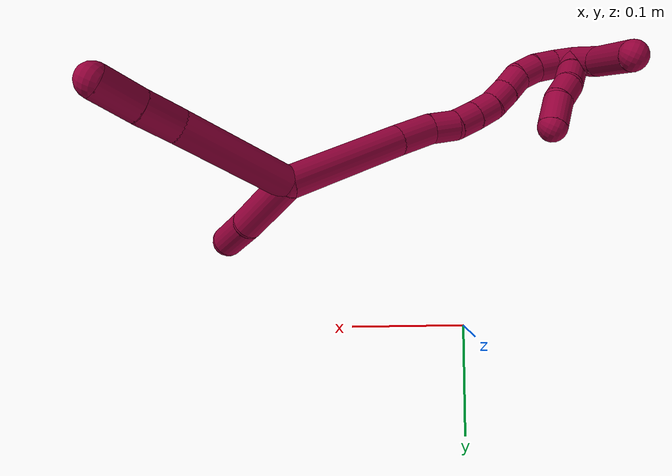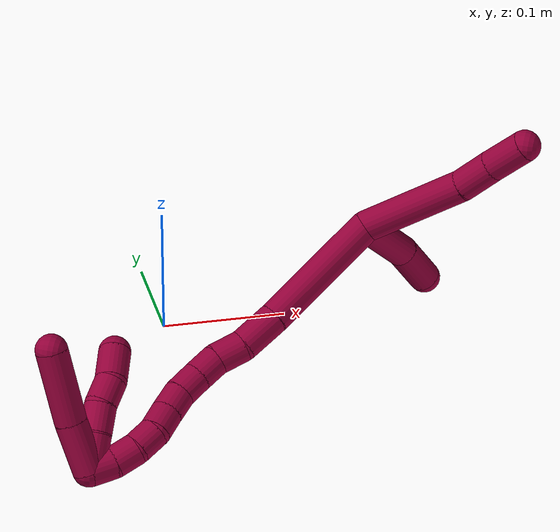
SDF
<sdf version="1.7">
 <world name="default">
  <model name="8">
   <static>0</static>
   <link name="8">
    <collision name="collision-cylinder-e_1_2_8">
     <pose>0.018056 0.017382 -0.03612 -2.69308 0.42323 -1.51093</pose>
     <geometry><cylinder><radius>0.0125</radius><length>0.087927</length></cylinder></geometry>
     <surface>
      <friction><ode><mu>1.16</mu><mu2>1.16</mu2><slip1>0</slip1><slip2>0</slip2></ode></friction>
      <contact><ode><kp>1e+06</kp><kd>1</kd><max_vel>0</max_vel><min_depth>0.001</min_depth></ode></contact>
     </surface>
    </collision>
    <visual name="visual-cylinder-e_1_2_8">
     <pose>0.018056 0.017382 -0.03612 -2.69308 0.42323 -1.51093</pose>
     <geometry><cylinder><radius>0.0125</radius><length>0.087927</length></cylinder></geometry>
     <material><ambient>0.584314 0 0.227451 1</ambient></material>
    </visual>
    <collision name="collision-cylinder-e_2_8_9">
     <pose>0.04332 0.042257 -0.082969 -2.53195 0.503447 -1.37054</pose>
     <geometry><cylinder><radius>0.0125</radius><length>0.029881</length></cylinder></geometry>
     <surface>
      <friction><ode><mu>1.16</mu><mu2>1.16</mu2><slip1>0</slip1><slip2>0</slip2></ode></friction>
      <contact><ode><kp>1e+06</kp><kd>1</kd><max_vel>0</max_vel><min_depth>0.001</min_depth></ode></contact>
     </surface>
    </collision>
    <visual name="visual-cylinder-e_2_8_9">
     <pose>0.04332 0.042257 -0.082969 -2.53195 0.503447 -1.37054</pose>
     <geometry><cylinder><radius>0.0125</radius><length>0.029881</length></cylinder></geometry>
     <material><ambient>0.584314 0 0.227451 1</ambient></material>
    </visual>
    <collision name="collision-cylinder-e_3_9_6">
     <pose>0.058669 0.057123 -0.105465 -2.58185 0.530259 -1.51395</pose>
     <geometry><cylinder><radius>0.0125</radius><length>0.032192</length></cylinder></geometry>
     <surface>
      <friction><ode><mu>1.16</mu><mu2>1.16</mu2><slip1>0</slip1><slip2>0</slip2></ode></friction>
      <contact><ode><kp>1e+06</kp><kd>1</kd><max_vel>0</max_vel><min_depth>0.001</min_depth></ode></contact>
     </surface>
    </collision>
    <visual name="visual-cylinder-e_3_9_6">
     <pose>0.058669 0.057123 -0.105465 -2.58185 0.530259 -1.51395</pose>
     <geometry><cylinder><radius>0.0125</radius><length>0.032192</length></cylinder></geometry>
     <material><ambient>0.584314 0 0.227451 1</ambient></material>
    </visual>
    <collision name="collision-cylinder-e_1_2_10">
     <pose>-0.027492 0.000513 -0.011626 -3.0975 -1.17035 3.07507</pose>
     <geometry><cylinder><radius>0.0125</radius><length>0.059707</length></cylinder></geometry>
     <surface>
      <friction><ode><mu>1.16</mu><mu2>1.16</mu2><slip1>0</slip1><slip2>0</slip2></ode></friction>
      <contact><ode><kp>1e+06</kp><kd>1</kd><max_vel>0</max_vel><min_depth>0.001</min_depth></ode></contact>
     </surface>
    </collision>
    <visual name="visual-cylinder-e_1_2_10">
     <pose>-0.027492 0.000513 -0.011626 -3.0975 -1.17035 3.07507</pose>
     <geometry><cylinder><radius>0.0125</radius><length>0.059707</length></cylinder></geometry>
     <material><ambient>0.584314 0 0.227451 1</ambient></material>
    </visual>
    <collision name="collision-cylinder-e_2_10_5">
     <pose>-0.072989 -0.002779 -0.031451 2.70711 -1.10558 -2.45444</pose>
     <geometry><cylinder><radius>0.0125</radius><length>0.040293</length></cylinder></geometry>
     <surface>
      <friction><ode><mu>1.16</mu><mu2>1.16</mu2><slip1>0</slip1><slip2>0</slip2></ode></friction>
      <contact><ode><kp>1e+06</kp><kd>1</kd><max_vel>0</max_vel><min_depth>0.001</min_depth></ode></contact>
     </surface>
    </collision>
    <visual name="visual-cylinder-e_2_10_5">
     <pose>-0.072989 -0.002779 -0.031451 2.70711 -1.10558 -2.45444</pose>
     <geometry><cylinder><radius>0.0125</radius><length>0.040293</length></cylinder></geometry>
     <material><ambient>0.584314 0 0.227451 1</ambient></material>
    </visual>
    <collision name="collision-cylinder-e_1_2_11">
     <pose>0.005933 -0.044031 0.026202 1.034 0.115282 0.065597</pose>
     <geometry><cylinder><radius>0.0125</radius><length>0.10316</length></cylinder></geometry>
     <surface>
      <friction><ode><mu>1.16</mu><mu2>1.16</mu2><slip1>0</slip1><slip2>0</slip2></ode></friction>
      <contact><ode><kp>1e+06</kp><kd>1</kd><max_vel>0</max_vel><min_depth>0.001</min_depth></ode></contact>
     </surface>
    </collision>
    <visual name="visual-cylinder-e_1_2_11">
     <pose>0.005933 -0.044031 0.026202 1.034 0.115282 0.065597</pose>
     <geometry><cylinder><radius>0.0125</radius><length>0.10316</length></cylinder></geometry>
     <material><ambient>0.584314 0 0.227451 1</ambient></material>
    </visual>
    <collision name="collision-cylinder-e_2_11_12">
     <pose>0.014221 -0.101656 0.061456 0.983344 0.14322 0.076793</pose>
     <geometry><cylinder><radius>0.0125</radius><length>0.033001</length></cylinder></geometry>
     <surface>
      <friction><ode><mu>1.16</mu><mu2>1.16</mu2><slip1>0</slip1><slip2>0</slip2></ode></friction>
      <contact><ode><kp>1e+06</kp><kd>1</kd><max_vel>0</max_vel><min_depth>0.001</min_depth></ode></contact>
     </surface>
    </collision>
    <visual name="visual-cylinder-e_2_11_12">
     <pose>0.014221 -0.101656 0.061456 0.983344 0.14322 0.076793</pose>
     <geometry><cylinder><radius>0.0125</radius><length>0.033001</length></cylinder></geometry>
     <material><ambient>0.584314 0 0.227451 1</ambient></material>
    </visual>
    <collision name="collision-cylinder-e_3_12_13">
     <pose>0.018306 -0.122886 0.079094 0.726948 0.149399 0.056918</pose>
     <geometry><cylinder><radius>0.0125</radius><length>0.023242</length></cylinder></geometry>
     <surface>
      <friction><ode><mu>1.16</mu><mu2>1.16</mu2><slip1>0</slip1><slip2>0</slip2></ode></friction>
      <contact><ode><kp>1e+06</kp><kd>1</kd><max_vel>0</max_vel><min_depth>0.001</min_depth></ode></contact>
     </surface>
    </collision>
    <visual name="visual-cylinder-e_3_12_13">
     <pose>0.018306 -0.122886 0.079094 0.726948 0.149399 0.056918</pose>
     <geometry><cylinder><radius>0.0125</radius><length>0.023242</length></cylinder></geometry>
     <material><ambient>0.584314 0 0.227451 1</ambient></material>
    </visual>
    <collision name="collision-cylinder-e_4_13_14">
     <pose>0.022458 -0.139081 0.092865 1.02605 0.237533 0.134243</pose>
     <geometry><cylinder><radius>0.0125</radius><length>0.020589</length></cylinder></geometry>
     <surface>
      <friction><ode><mu>1.16</mu><mu2>1.16</mu2><slip1>0</slip1><slip2>0</slip2></ode></friction>
      <contact><ode><kp>1e+06</kp><kd>1</kd><max_vel>0</max_vel><min_depth>0.001</min_depth></ode></contact>
     </surface>
    </collision>
    <visual name="visual-cylinder-e_4_13_14">
     <pose>0.022458 -0.139081 0.092865 1.02605 0.237533 0.134243</pose>
     <geometry><cylinder><radius>0.0125</radius><length>0.020589</length></cylinder></geometry>
     <material><ambient>0.584314 0 0.227451 1</ambient></material>
    </visual>
    <collision name="collision-cylinder-e_5_14_15">
     <pose>0.027665 -0.156046 0.102693 1.06627 0.282132 0.167219</pose>
     <geometry><cylinder><radius>0.0125</radius><length>0.02</length></cylinder></geometry>
     <surface>
      <friction><ode><mu>1.16</mu><mu2>1.16</mu2><slip1>0</slip1><slip2>0</slip2></ode></friction>
      <contact><ode><kp>1e+06</kp><kd>1</kd><max_vel>0</max_vel><min_depth>0.001</min_depth></ode></contact>
     </surface>
    </collision>
    <visual name="visual-cylinder-e_5_14_15">
     <pose>0.027665 -0.156046 0.102693 1.06627 0.282132 0.167219</pose>
     <geometry><cylinder><radius>0.0125</radius><length>0.02</length></cylinder></geometry>
     <material><ambient>0.584314 0 0.227451 1</ambient></material>
    </visual>
    <collision name="collision-cylinder-e_6_15_16">
     <pose>0.033926 -0.173502 0.109802 1.30475 0.355099 0.27247</pose>
     <geometry><cylinder><radius>0.0125</radius><length>0.020003</length></cylinder></geometry>
     <surface>
      <friction><ode><mu>1.16</mu><mu2>1.16</mu2><slip1>0</slip1><slip2>0</slip2></ode></friction>
      <contact><ode><kp>1e+06</kp><kd>1</kd><max_vel>0</max_vel><min_depth>0.001</min_depth></ode></contact>
     </surface>
    </collision>
    <visual name="visual-cylinder-e_6_15_16">
     <pose>0.033926 -0.173502 0.109802 1.30475 0.355099 0.27247</pose>
     <geometry><cylinder><radius>0.0125</radius><length>0.020003</length></cylinder></geometry>
     <material><ambient>0.584314 0 0.227451 1</ambient></material>
    </visual>
    <collision name="collision-cylinder-e_7_16_17">
     <pose>0.041381 -0.191515 0.114228 1.35547 0.408951 0.33079</pose>
     <geometry><cylinder><radius>0.0125</radius><length>0.020004</length></cylinder></geometry>
     <surface>
      <friction><ode><mu>1.16</mu><mu2>1.16</mu2><slip1>0</slip1><slip2>0</slip2></ode></friction>
      <contact><ode><kp>1e+06</kp><kd>1</kd><max_vel>0</max_vel><min_depth>0.001</min_depth></ode></contact>
     </surface>
    </collision>
    <visual name="visual-cylinder-e_7_16_17">
     <pose>0.041381 -0.191515 0.114228 1.35547 0.408951 0.33079</pose>
     <geometry><cylinder><radius>0.0125</radius><length>0.020004</length></cylinder></geometry>
     <material><ambient>0.584314 0 0.227451 1</ambient></material>
    </visual>
    <collision name="collision-cylinder-e_8_17_18">
     <pose>0.047955 -0.208772 0.121139 1.03261 0.262708 0.149714</pose>
     <geometry><cylinder><radius>0.0125</radius><length>0.02</length></cylinder></geometry>
     <surface>
      <friction><ode><mu>1.16</mu><mu2>1.16</mu2><slip1>0</slip1><slip2>0</slip2></ode></friction>
      <contact><ode><kp>1e+06</kp><kd>1</kd><max_vel>0</max_vel><min_depth>0.001</min_depth></ode></contact>
     </surface>
    </collision>
    <visual name="visual-cylinder-e_8_17_18">
     <pose>0.047955 -0.208772 0.121139 1.03261 0.262708 0.149714</pose>
     <geometry><cylinder><radius>0.0125</radius><length>0.02</length></cylinder></geometry>
     <material><ambient>0.584314 0 0.227451 1</ambient></material>
    </visual>
    <collision name="collision-cylinder-e_9_18_19">
     <pose>0.052202 -0.224207 0.13289 0.80987 0.165769 0.071186</pose>
     <geometry><cylinder><radius>0.0125</radius><length>0.02</length></cylinder></geometry>
     <surface>
      <friction><ode><mu>1.16</mu><mu2>1.16</mu2><slip1>0</slip1><slip2>0</slip2></ode></friction>
      <contact><ode><kp>1e+06</kp><kd>1</kd><max_vel>0</max_vel><min_depth>0.001</min_depth></ode></contact>
     </surface>
    </collision>
    <visual name="visual-cylinder-e_9_18_19">
     <pose>0.052202 -0.224207 0.13289 0.80987 0.165769 0.071186</pose>
     <geometry><cylinder><radius>0.0125</radius><length>0.02</length></cylinder></geometry>
     <material><ambient>0.584314 0 0.227451 1</ambient></material>
    </visual>
    <collision name="collision-cylinder-e_10_19_1">
     <pose>0.056552 -0.236798 0.147631 0.601419 0.273389 0.085262</pose>
     <geometry><cylinder><radius>0.0125</radius><length>0.02</length></cylinder></geometry>
     <surface>
      <friction><ode><mu>1.16</mu><mu2>1.16</mu2><slip1>0</slip1><slip2>0</slip2></ode></friction>
      <contact><ode><kp>1e+06</kp><kd>1</kd><max_vel>0</max_vel><min_depth>0.001</min_depth></ode></contact>
     </surface>
    </collision>
    <visual name="visual-cylinder-e_10_19_1">
     <pose>0.056552 -0.236798 0.147631 0.601419 0.273389 0.085262</pose>
     <geometry><cylinder><radius>0.0125</radius><length>0.02</length></cylinder></geometry>
     <material><ambient>0.584314 0 0.227451 1</ambient></material>
    </visual>
    <collision name="collision-cylinder-e_1_1_20">
     <pose>0.070831 -0.227418 0.164114 -1.04805 0.594836 -0.35064</pose>
     <geometry><cylinder><radius>0.0125</radius><length>0.041325</length></cylinder></geometry>
     <surface>
      <friction><ode><mu>1.16</mu><mu2>1.16</mu2><slip1>0</slip1><slip2>0</slip2></ode></friction>
      <contact><ode><kp>1e+06</kp><kd>1</kd><max_vel>0</max_vel><min_depth>0.001</min_depth></ode></contact>
     </surface>
    </collision>
    <visual name="visual-cylinder-e_1_1_20">
     <pose>0.070831 -0.227418 0.164114 -1.04805 0.594836 -0.35064</pose>
     <geometry><cylinder><radius>0.0125</radius><length>0.041325</length></cylinder></geometry>
     <material><ambient>0.584314 0 0.227451 1</ambient></material>
    </visual>
    <collision name="collision-cylinder-e_2_20_4">
     <pose>0.100172 -0.191145 0.181895 -1.16408 0.65032 -0.436646</pose>
     <geometry><cylinder><radius>0.0125</radius><length>0.058675</length></cylinder></geometry>
     <surface>
      <friction><ode><mu>1.16</mu><mu2>1.16</mu2><slip1>0</slip1><slip2>0</slip2></ode></friction>
      <contact><ode><kp>1e+06</kp><kd>1</kd><max_vel>0</max_vel><min_depth>0.001</min_depth></ode></contact>
     </surface>
    </collision>
    <visual name="visual-cylinder-e_2_20_4">
     <pose>0.100172 -0.191145 0.181895 -1.16408 0.65032 -0.436646</pose>
     <geometry><cylinder><radius>0.0125</radius><length>0.058675</length></cylinder></geometry>
     <material><ambient>0.584314 0 0.227451 1</ambient></material>
    </visual>
    <collision name="collision-cylinder-e_1_1_21">
     <pose>0.0608 -0.228199 0.156077 -1.53469 0.109644 -0.105763</pose>
     <geometry><cylinder><radius>0.0125</radius><length>0.028281</length></cylinder></geometry>
     <surface>
      <friction><ode><mu>1.16</mu><mu2>1.16</mu2><slip1>0</slip1><slip2>0</slip2></ode></friction>
      <contact><ode><kp>1e+06</kp><kd>1</kd><max_vel>0</max_vel><min_depth>0.001</min_depth></ode></contact>
     </surface>
    </collision>
    <visual name="visual-cylinder-e_1_1_21">
     <pose>0.0608 -0.228199 0.156077 -1.53469 0.109644 -0.105763</pose>
     <geometry><cylinder><radius>0.0125</radius><length>0.028281</length></cylinder></geometry>
     <material><ambient>0.584314 0 0.227451 1</ambient></material>
    </visual>
    <collision name="collision-cylinder-e_2_21_22">
     <pose>0.062185 -0.202752 0.157273 -1.51051 -0.014145 0.013317</pose>
     <geometry><cylinder><radius>0.0125</radius><length>0.022846</length></cylinder></geometry>
     <surface>
      <friction><ode><mu>1.16</mu><mu2>1.16</mu2><slip1>0</slip1><slip2>0</slip2></ode></friction>
      <contact><ode><kp>1e+06</kp><kd>1</kd><max_vel>0</max_vel><min_depth>0.001</min_depth></ode></contact>
     </surface>
    </collision>
    <visual name="visual-cylinder-e_2_21_22">
     <pose>0.062185 -0.202752 0.157273 -1.51051 -0.014145 0.013317</pose>
     <geometry><cylinder><radius>0.0125</radius><length>0.022846</length></cylinder></geometry>
     <material><ambient>0.584314 0 0.227451 1</ambient></material>
    </visual>
    <collision name="collision-cylinder-e_3_22_23">
     <pose>0.059596 -0.181082 0.156791 -1.68428 -0.230692 0.258187</pose>
     <geometry><cylinder><radius>0.0125</radius><length>0.021232</length></cylinder></geometry>
     <surface>
      <friction><ode><mu>1.16</mu><mu2>1.16</mu2><slip1>0</slip1><slip2>0</slip2></ode></friction>
      <contact><ode><kp>1e+06</kp><kd>1</kd><max_vel>0</max_vel><min_depth>0.001</min_depth></ode></contact>
     </surface>
    </collision>
    <visual name="visual-cylinder-e_3_22_23">
     <pose>0.059596 -0.181082 0.156791 -1.68428 -0.230692 0.258187</pose>
     <geometry><cylinder><radius>0.0125</radius><length>0.021232</length></cylinder></geometry>
     <material><ambient>0.584314 0 0.227451 1</ambient></material>
    </visual>
    <collision name="collision-cylinder-e_4_23_3">
     <pose>0.052217 -0.158113 0.157894 -1.39369 -0.366448 0.307711</pose>
     <geometry><cylinder><radius>0.0125</radius><length>0.027641</length></cylinder></geometry>
     <surface>
      <friction><ode><mu>1.16</mu><mu2>1.16</mu2><slip1>0</slip1><slip2>0</slip2></ode></friction>
      <contact><ode><kp>1e+06</kp><kd>1</kd><max_vel>0</max_vel><min_depth>0.001</min_depth></ode></contact>
     </surface>
    </collision>
    <visual name="visual-cylinder-e_4_23_3">
     <pose>0.052217 -0.158113 0.157894 -1.39369 -0.366448 0.307711</pose>
     <geometry><cylinder><radius>0.0125</radius><length>0.027641</length></cylinder></geometry>
     <material><ambient>0.584314 0 0.227451 1</ambient></material>
    </visual>
    <collision name="collision-sphere-3">
     <pose>0.047265 -0.145412 0.160167 0 -0 0</pose>
     <geometry><sphere><radius>0.0125</radius></sphere></geometry>
     <surface>
      <friction><ode><mu>1.16</mu><mu2>1.16</mu2><slip1>0</slip1><slip2>0</slip2></ode></friction>
      <contact><ode><kp>1e+06</kp><kd>1</kd><max_vel>0</max_vel><min_depth>0.001</min_depth></ode></contact>
     </surface>
    </collision>
    <visual name="visual-sphere-3">
     <pose>0.047265 -0.145412 0.160167 0 -0 0</pose>
     <geometry><sphere><radius>0.0125</radius></sphere></geometry>
     <material><ambient>0.584314 0 0.227451 1</ambient></material>
    </visual>
    <collision name="collision-sphere-23">
     <pose>0.057169 -0.170814 0.155621 0 -0 0</pose>
     <geometry><sphere><radius>0.0125</radius></sphere></geometry>
     <surface>
      <friction><ode><mu>1.16</mu><mu2>1.16</mu2><slip1>0</slip1><slip2>0</slip2></ode></friction>
      <contact><ode><kp>1e+06</kp><kd>1</kd><max_vel>0</max_vel><min_depth>0.001</min_depth></ode></contact>
     </surface>
    </collision>
    <visual name="visual-sphere-23">
     <pose>0.057169 -0.170814 0.155621 0 -0 0</pose>
     <geometry><sphere><radius>0.0125</radius></sphere></geometry>
     <material><ambient>0.584314 0 0.227451 1</ambient></material>
    </visual>
    <collision name="collision-sphere-22">
     <pose>0.062024 -0.191351 0.157961 0 -0 0</pose>
     <geometry><sphere><radius>0.0125</radius></sphere></geometry>
     <surface>
      <friction><ode><mu>1.16</mu><mu2>1.16</mu2><slip1>0</slip1><slip2>0</slip2></ode></friction>
      <contact><ode><kp>1e+06</kp><kd>1</kd><max_vel>0</max_vel><min_depth>0.001</min_depth></ode></contact>
     </surface>
    </collision>
    <visual name="visual-sphere-22">
     <pose>0.062024 -0.191351 0.157961 0 -0 0</pose>
     <geometry><sphere><radius>0.0125</radius></sphere></geometry>
     <material><ambient>0.584314 0 0.227451 1</ambient></material>
    </visual>
    <collision name="collision-sphere-21">
     <pose>0.062347 -0.214153 0.156585 0 -0 0</pose>
     <geometry><sphere><radius>0.0125</radius></sphere></geometry>
     <surface>
      <friction><ode><mu>1.16</mu><mu2>1.16</mu2><slip1>0</slip1><slip2>0</slip2></ode></friction>
      <contact><ode><kp>1e+06</kp><kd>1</kd><max_vel>0</max_vel><min_depth>0.001</min_depth></ode></contact>
     </surface>
    </collision>
    <visual name="visual-sphere-21">
     <pose>0.062347 -0.214153 0.156585 0 -0 0</pose>
     <geometry><sphere><radius>0.0125</radius></sphere></geometry>
     <material><ambient>0.584314 0 0.227451 1</ambient></material>
    </visual>
    <collision name="collision-sphere-4">
     <pose>0.117934 -0.1697 0.191132 0 -0 0</pose>
     <geometry><sphere><radius>0.0125</radius></sphere></geometry>
     <surface>
      <friction><ode><mu>1.16</mu><mu2>1.16</mu2><slip1>0</slip1><slip2>0</slip2></ode></friction>
      <contact><ode><kp>1e+06</kp><kd>1</kd><max_vel>0</max_vel><min_depth>0.001</min_depth></ode></contact>
     </surface>
    </collision>
    <visual name="visual-sphere-4">
     <pose>0.117934 -0.1697 0.191132 0 -0 0</pose>
     <geometry><sphere><radius>0.0125</radius></sphere></geometry>
     <material><ambient>0.584314 0 0.227451 1</ambient></material>
    </visual>
    <collision name="collision-sphere-20">
     <pose>0.08241 -0.21259 0.172658 0 -0 0</pose>
     <geometry><sphere><radius>0.0125</radius></sphere></geometry>
     <surface>
      <friction><ode><mu>1.16</mu><mu2>1.16</mu2><slip1>0</slip1><slip2>0</slip2></ode></friction>
      <contact><ode><kp>1e+06</kp><kd>1</kd><max_vel>0</max_vel><min_depth>0.001</min_depth></ode></contact>
     </surface>
    </collision>
    <visual name="visual-sphere-20">
     <pose>0.08241 -0.21259 0.172658 0 -0 0</pose>
     <geometry><sphere><radius>0.0125</radius></sphere></geometry>
     <material><ambient>0.584314 0 0.227451 1</ambient></material>
    </visual>
    <collision name="collision-sphere-5">
     <pose>-0.090994 -0.006583 -0.039649 0 -0 0</pose>
     <geometry><sphere><radius>0.0125</radius></sphere></geometry>
     <surface>
      <friction><ode><mu>1.16</mu><mu2>1.16</mu2><slip1>0</slip1><slip2>0</slip2></ode></friction>
      <contact><ode><kp>1e+06</kp><kd>1</kd><max_vel>0</max_vel><min_depth>0.001</min_depth></ode></contact>
     </surface>
    </collision>
    <visual name="visual-sphere-5">
     <pose>-0.090994 -0.006583 -0.039649 0 -0 0</pose>
     <geometry><sphere><radius>0.0125</radius></sphere></geometry>
     <material><ambient>0.584314 0 0.227451 1</ambient></material>
    </visual>
    <collision name="collision-sphere-10">
     <pose>-0.054984 0.001026 -0.023253 0 -0 0</pose>
     <geometry><sphere><radius>0.0125</radius></sphere></geometry>
     <surface>
      <friction><ode><mu>1.16</mu><mu2>1.16</mu2><slip1>0</slip1><slip2>0</slip2></ode></friction>
      <contact><ode><kp>1e+06</kp><kd>1</kd><max_vel>0</max_vel><min_depth>0.001</min_depth></ode></contact>
     </surface>
    </collision>
    <visual name="visual-sphere-10">
     <pose>-0.054984 0.001026 -0.023253 0 -0 0</pose>
     <geometry><sphere><radius>0.0125</radius></sphere></geometry>
     <material><ambient>0.584314 0 0.227451 1</ambient></material>
    </visual>
    <collision name="collision-sphere-6">
     <pose>0.06681 0.064495 -0.117231 0 -0 0</pose>
     <geometry><sphere><radius>0.0125</radius></sphere></geometry>
     <surface>
      <friction><ode><mu>1.16</mu><mu2>1.16</mu2><slip1>0</slip1><slip2>0</slip2></ode></friction>
      <contact><ode><kp>1e+06</kp><kd>1</kd><max_vel>0</max_vel><min_depth>0.001</min_depth></ode></contact>
     </surface>
    </collision>
    <visual name="visual-sphere-6">
     <pose>0.06681 0.064495 -0.117231 0 -0 0</pose>
     <geometry><sphere><radius>0.0125</radius></sphere></geometry>
     <material><ambient>0.584314 0 0.227451 1</ambient></material>
    </visual>
    <collision name="collision-sphere-9">
     <pose>0.050528 0.04975 -0.093698 0 -0 0</pose>
     <geometry><sphere><radius>0.0125</radius></sphere></geometry>
     <surface>
      <friction><ode><mu>1.16</mu><mu2>1.16</mu2><slip1>0</slip1><slip2>0</slip2></ode></friction>
      <contact><ode><kp>1e+06</kp><kd>1</kd><max_vel>0</max_vel><min_depth>0.001</min_depth></ode></contact>
     </surface>
    </collision>
    <visual name="visual-sphere-9">
     <pose>0.050528 0.04975 -0.093698 0 -0 0</pose>
     <geometry><sphere><radius>0.0125</radius></sphere></geometry>
     <material><ambient>0.584314 0 0.227451 1</ambient></material>
    </visual>
    <collision name="collision-sphere-2">
     <geometry><sphere><radius>0.0125</radius></sphere></geometry>
     <surface>
      <friction><ode><mu>1.16</mu><mu2>1.16</mu2><slip1>0</slip1><slip2>0</slip2></ode></friction>
      <contact><ode><kp>1e+06</kp><kd>1</kd><max_vel>0</max_vel><min_depth>0.001</min_depth></ode></contact>
     </surface>
    </collision>
    <visual name="visual-sphere-2">
     <geometry><sphere><radius>0.0125</radius></sphere></geometry>
     <material><ambient>0.584314 0 0.227451 1</ambient></material>
    </visual>
    <collision name="collision-sphere-19">
     <pose>0.053852 -0.23135 0.139692 0 -0 0</pose>
     <geometry><sphere><radius>0.0125</radius></sphere></geometry>
     <surface>
      <friction><ode><mu>1.16</mu><mu2>1.16</mu2><slip1>0</slip1><slip2>0</slip2></ode></friction>
      <contact><ode><kp>1e+06</kp><kd>1</kd><max_vel>0</max_vel><min_depth>0.001</min_depth></ode></contact>
     </surface>
    </collision>
    <visual name="visual-sphere-19">
     <pose>0.053852 -0.23135 0.139692 0 -0 0</pose>
     <geometry><sphere><radius>0.0125</radius></sphere></geometry>
     <material><ambient>0.584314 0 0.227451 1</ambient></material>
    </visual>
    <collision name="collision-sphere-8">
     <pose>0.036112 0.034763 -0.072239 0 -0 0</pose>
     <geometry><sphere><radius>0.0125</radius></sphere></geometry>
     <surface>
      <friction><ode><mu>1.16</mu><mu2>1.16</mu2><slip1>0</slip1><slip2>0</slip2></ode></friction>
      <contact><ode><kp>1e+06</kp><kd>1</kd><max_vel>0</max_vel><min_depth>0.001</min_depth></ode></contact>
     </surface>
    </collision>
    <visual name="visual-sphere-8">
     <pose>0.036112 0.034763 -0.072239 0 -0 0</pose>
     <geometry><sphere><radius>0.0125</radius></sphere></geometry>
     <material><ambient>0.584314 0 0.227451 1</ambient></material>
    </visual>
    <collision name="collision-sphere-11">
     <pose>0.011866 -0.088062 0.052404 0 -0 0</pose>
     <geometry><sphere><radius>0.0125</radius></sphere></geometry>
     <surface>
      <friction><ode><mu>1.16</mu><mu2>1.16</mu2><slip1>0</slip1><slip2>0</slip2></ode></friction>
      <contact><ode><kp>1e+06</kp><kd>1</kd><max_vel>0</max_vel><min_depth>0.001</min_depth></ode></contact>
     </surface>
    </collision>
    <visual name="visual-sphere-11">
     <pose>0.011866 -0.088062 0.052404 0 -0 0</pose>
     <geometry><sphere><radius>0.0125</radius></sphere></geometry>
     <material><ambient>0.584314 0 0.227451 1</ambient></material>
    </visual>
    <collision name="collision-sphere-12">
     <pose>0.016576 -0.115249 0.070508 0 -0 0</pose>
     <geometry><sphere><radius>0.0125</radius></sphere></geometry>
     <surface>
      <friction><ode><mu>1.16</mu><mu2>1.16</mu2><slip1>0</slip1><slip2>0</slip2></ode></friction>
      <contact><ode><kp>1e+06</kp><kd>1</kd><max_vel>0</max_vel><min_depth>0.001</min_depth></ode></contact>
     </surface>
    </collision>
    <visual name="visual-sphere-12">
     <pose>0.016576 -0.115249 0.070508 0 -0 0</pose>
     <geometry><sphere><radius>0.0125</radius></sphere></geometry>
     <material><ambient>0.584314 0 0.227451 1</ambient></material>
    </visual>
    <collision name="collision-sphere-13">
     <pose>0.020036 -0.130523 0.087681 0 -0 0</pose>
     <geometry><sphere><radius>0.0125</radius></sphere></geometry>
     <surface>
      <friction><ode><mu>1.16</mu><mu2>1.16</mu2><slip1>0</slip1><slip2>0</slip2></ode></friction>
      <contact><ode><kp>1e+06</kp><kd>1</kd><max_vel>0</max_vel><min_depth>0.001</min_depth></ode></contact>
     </surface>
    </collision>
    <visual name="visual-sphere-13">
     <pose>0.020036 -0.130523 0.087681 0 -0 0</pose>
     <geometry><sphere><radius>0.0125</radius></sphere></geometry>
     <material><ambient>0.584314 0 0.227451 1</ambient></material>
    </visual>
    <collision name="collision-sphere-14">
     <pose>0.024881 -0.147638 0.09805 0 -0 0</pose>
     <geometry><sphere><radius>0.0125</radius></sphere></geometry>
     <surface>
      <friction><ode><mu>1.16</mu><mu2>1.16</mu2><slip1>0</slip1><slip2>0</slip2></ode></friction>
      <contact><ode><kp>1e+06</kp><kd>1</kd><max_vel>0</max_vel><min_depth>0.001</min_depth></ode></contact>
     </surface>
    </collision>
    <visual name="visual-sphere-14">
     <pose>0.024881 -0.147638 0.09805 0 -0 0</pose>
     <geometry><sphere><radius>0.0125</radius></sphere></geometry>
     <material><ambient>0.584314 0 0.227451 1</ambient></material>
    </visual>
    <collision name="collision-sphere-15">
     <pose>0.030449 -0.164454 0.107336 0 -0 0</pose>
     <geometry><sphere><radius>0.0125</radius></sphere></geometry>
     <surface>
      <friction><ode><mu>1.16</mu><mu2>1.16</mu2><slip1>0</slip1><slip2>0</slip2></ode></friction>
      <contact><ode><kp>1e+06</kp><kd>1</kd><max_vel>0</max_vel><min_depth>0.001</min_depth></ode></contact>
     </surface>
    </collision>
    <visual name="visual-sphere-15">
     <pose>0.030449 -0.164454 0.107336 0 -0 0</pose>
     <geometry><sphere><radius>0.0125</radius></sphere></geometry>
     <material><ambient>0.584314 0 0.227451 1</ambient></material>
    </visual>
    <collision name="collision-sphere-16">
     <pose>0.037404 -0.18255 0.112267 0 -0 0</pose>
     <geometry><sphere><radius>0.0125</radius></sphere></geometry>
     <surface>
      <friction><ode><mu>1.16</mu><mu2>1.16</mu2><slip1>0</slip1><slip2>0</slip2></ode></friction>
      <contact><ode><kp>1e+06</kp><kd>1</kd><max_vel>0</max_vel><min_depth>0.001</min_depth></ode></contact>
     </surface>
    </collision>
    <visual name="visual-sphere-16">
     <pose>0.037404 -0.18255 0.112267 0 -0 0</pose>
     <geometry><sphere><radius>0.0125</radius></sphere></geometry>
     <material><ambient>0.584314 0 0.227451 1</ambient></material>
    </visual>
    <collision name="collision-sphere-17">
     <pose>0.045358 -0.200481 0.116189 0 -0 0</pose>
     <geometry><sphere><radius>0.0125</radius></sphere></geometry>
     <surface>
      <friction><ode><mu>1.16</mu><mu2>1.16</mu2><slip1>0</slip1><slip2>0</slip2></ode></friction>
      <contact><ode><kp>1e+06</kp><kd>1</kd><max_vel>0</max_vel><min_depth>0.001</min_depth></ode></contact>
     </surface>
    </collision>
    <visual name="visual-sphere-17">
     <pose>0.045358 -0.200481 0.116189 0 -0 0</pose>
     <geometry><sphere><radius>0.0125</radius></sphere></geometry>
     <material><ambient>0.584314 0 0.227451 1</ambient></material>
    </visual>
    <collision name="collision-sphere-18">
     <pose>0.050552 -0.217064 0.126089 0 -0 0</pose>
     <geometry><sphere><radius>0.0125</radius></sphere></geometry>
     <surface>
      <friction><ode><mu>1.16</mu><mu2>1.16</mu2><slip1>0</slip1><slip2>0</slip2></ode></friction>
      <contact><ode><kp>1e+06</kp><kd>1</kd><max_vel>0</max_vel><min_depth>0.001</min_depth></ode></contact>
     </surface>
    </collision>
    <visual name="visual-sphere-18">
     <pose>0.050552 -0.217064 0.126089 0 -0 0</pose>
     <geometry><sphere><radius>0.0125</radius></sphere></geometry>
     <material><ambient>0.584314 0 0.227451 1</ambient></material>
    </visual>
    <collision name="collision-sphere-1">
     <pose>0.059252 -0.242246 0.15557 0 -0 0</pose>
     <geometry><sphere><radius>0.0125</radius></sphere></geometry>
     <surface>
      <friction><ode><mu>1.16</mu><mu2>1.16</mu2><slip1>0</slip1><slip2>0</slip2></ode></friction>
      <contact><ode><kp>1e+06</kp><kd>1</kd><max_vel>0</max_vel><min_depth>0.001</min_depth></ode></contact>
     </surface>
    </collision>
    <visual name="visual-sphere-1">
     <pose>0.059252 -0.242246 0.15557 0 -0 0</pose>
     <geometry><sphere><radius>0.0125</radius></sphere></geometry>
     <material><ambient>0.584314 0 0.227451 1</ambient></material>
    </visual>
    <inertial>
     <pose>0.02934 -0.097068 0.060258 0 -0 0</pose>
     <mass>0.75</mass>
     <inertia><ixx>7.7e-05</ixx><ixy>0</ixy><ixz>0</ixz><iyy>4.8e-05</iyy><iyz>0</iyz><izz>1e-05</izz></inertia>
    </inertial>
   </link>
   <pose>0.138774 -0.117991 0.132067 1.47165 -0.754941 -1.9602</pose>
  </model>
 </world>
</sdf>
